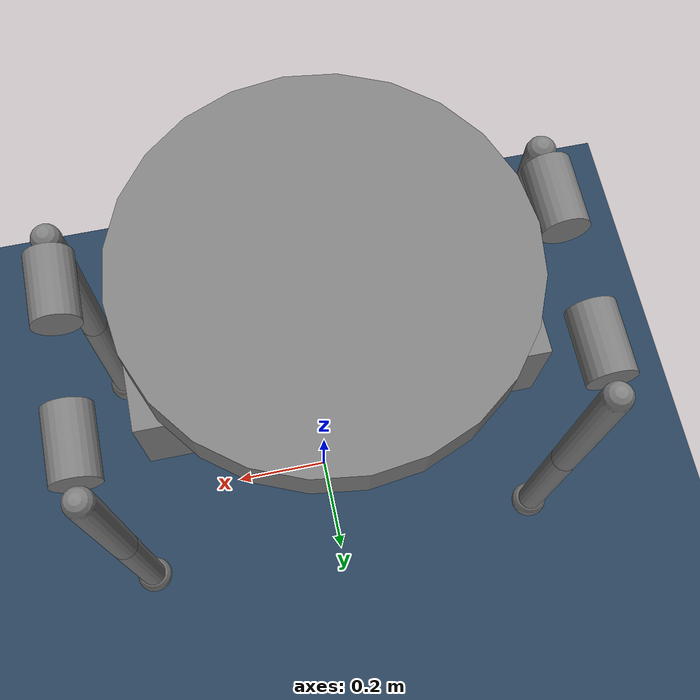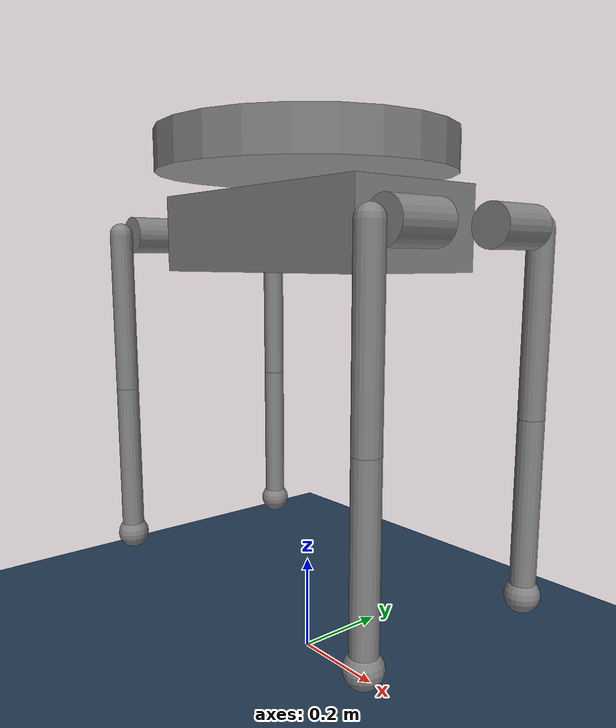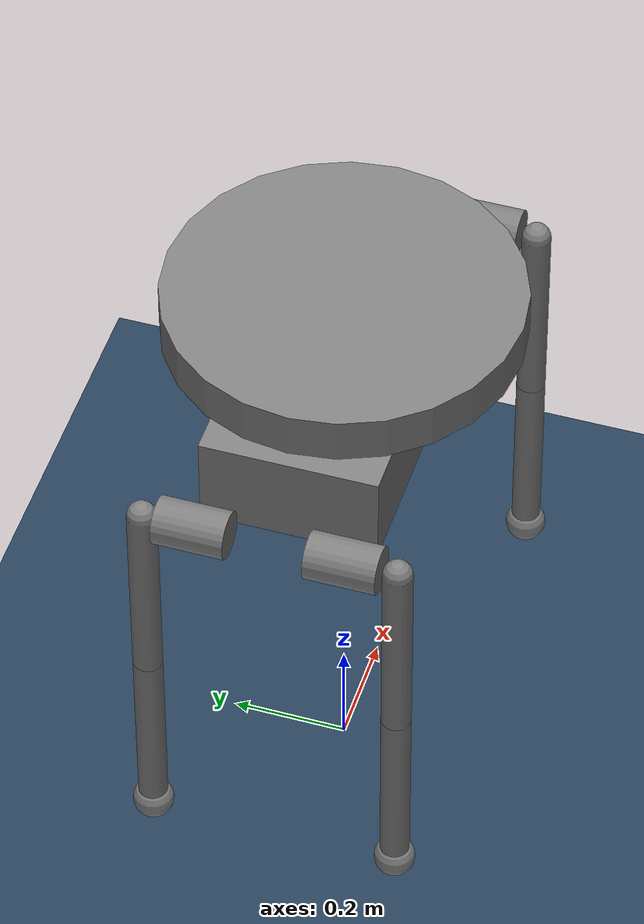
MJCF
<mujoco model="robot scene">

  <include file="model_105V1.xml"/>

  <statistic center="0 0 0.1" extent="0.8"/>

  <visual>
    <headlight diffuse="0.6 0.6 0.6"  ambient="0.3 0.3 0.3" specular="0 0 0"/>
    <rgba haze="0.15 0.25 0.35 1"/>
    <global azimuth="120" elevation="-20"/>
  </visual>

  <asset>
    <texture type="skybox" builtin="gradient" rgb1="0.3 0.5 0.7" rgb2="0 0 0" width="512"
        height="3072"/>
    <texture type="2d" name="groundplane" builtin="checker" mark="edge" rgb1="0.2 0.3 0.4"
        rgb2="0.1 0.2 0.3" markrgb="0.8 0.8 0.8" width="300" height="300"/>
    <material name="groundplane" texture="groundplane" texuniform="true" texrepeat="5 5"
        reflectance="0.0"/>
  </asset>

  <worldbody>
    <light pos="0 0 1.5" dir="0 0 -1" directional="true"/>
    <geom name="floor" size="0 0 0.05" type="plane" material="groundplane"/>
  </worldbody>

</mujoco>

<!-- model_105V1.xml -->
<mujoco model="prototype_model"> <!-- model 1 data20230527 -->
  <compiler angle="radian" assetdir="assets" texturedir="assets" discardvisual="false" autolimits="true" eulerseq="zyx"/>
  <option timestep="0.001"  tolerance="0.0000000001" impratio="1" noslip_iterations="10000"/>

  <visual >
    <rgba contactpoint="0.1 0.8 0.2 1" contactforce="0.7 0.9 0.9 1"/>
    <scale forcewidth="0.04" contactwidth="0.15" contactheight="0.01"/>
  </visual>

  <default>
    <default class="quadruped">
      <geom friction="0.8" margin="0.001"/>
      <default class="collision">
        <geom group="2"/>
        <default class="load">
          <geom type="cylinder" size="0.3 0.04" mass="24" pos="0 0 0.15" quat="1 0 0 0"/>
        </default>
        <default class="abad">
          <geom type="cylinder" size="0.04 0.06" mass="1.1"  quat="1 1 0 0"/>
        </default>
        <default class="thigh">
          <geom type="capsule" size="0.025" fromto="0 0 0 0 0 -0.35" mass="1.0"/>
        </default>
        <default class="calf">
          <geom type="capsule" size="0.025" fromto="0 0 0 0 0 -0.35" mass="0.68"/>
        </default>
        <default class="foot">
          <geom type="sphere" size="0.035" pos="0 0 -0.35" mass="0.0001" priority="1" solimp="0.015 1 0.031"
              condim="6" friction="0.8 0.02 0.01"/>
        </default>
        <default class="foot_site">
          <site size="0.035" pos="0 0 -0.35"/>
        </default>
      </default>
    </default>
  </default>

  <asset>
    <texture type="2d" name="trunk" file="texture.png"/>
    <material name="eame_color" texture="trunk" specular="1" shininess="0.25"/>
  </asset>

  <worldbody>
    <light name="spotlight" mode="targetbodycom" target="trunk_link" pos="0 -1 2"/>
    <body name="trunk_link" pos="0 0 0.9">
      <geom class="collision" mass="70.08" group="2" pos="0 0 0.0" size="0.3 0.15 0.08" type="box"/>
      <geom class="load"/>
      <site name="imu" size="0.01" pos="0 0 0"/>
      <freejoint/>
      <body name="FR_abad" pos="0.4 -0.086 0">
        <joint name="FR_abad_joint" pos="-0.0765 0 0" axis="1 0 0" range="-0.802851 0.802851" damping="0.5"/>
        <geom class="abad" group="2" pos="0 -0.04 0"/>
        <body name="FR_thigh" pos="0 -0.127 0">
          <geom class="thigh" group="2"/>
          <joint name="FR_hip_joint" pos="0 0.05 0" axis="0 -1 0" range="-4.18879 1.0472" damping="0.5"/>
          <body name="FR_calf" pos="0 0 -0.35">
            <joint name="FR_calf_joint" pos="0 0 0" axis="0 -1 0" range="0.1 3" damping="0.5"/>
            <geom class="calf" group="2"/>
            <geom class="foot"/>
            <site class="foot_site" name="fr_site"/>
          </body>
        </body>
      </body>
      <body name="FL_abad" pos="0.4 0.086 0">
        <joint name="FL_abad_joint" pos="-0.0765 0 0" axis="1 0 0" range="-0.802851 0.802851" damping="0.5"/>
        <geom class="abad" group="2"  pos="0 0.04 0"/>
        <body name="FL_thigh" pos="0 0.127 0">
          <joint name="FL_hip_joint" pos="0 -0.05 0" axis="0 -1 0" range="-4.18879 1.0472" damping="0.5"/>
          <geom class="thigh" group="2"/>
          <body name="FL_calf" pos="0 0 -0.35">
            <joint name="FL_calf_joint" pos="0 0 0" axis="0 -1 0" range="0.1 3" damping="0.5"/>
            <geom class="calf" group="2"/>
            <geom class="foot"/>
            <site class="foot_site" name="fl_site"/>
          </body>
        </body>
      </body>
      <body name="RR_abad" pos="-0.4 -0.086 0">
       <joint name="RR_abad_joint" pos="0.0765 0 0" axis="1 0 0" range="-0.802851 0.802851" damping="0.5"/>
       <geom class="abad" group="2" pos="0 -0.04 0"/>
       <body name="RR_thigh" pos="0 -0.127 0">
        <geom class="thigh" group="2"/>
        <joint name="RR_hip_joint" pos="0 0.05 0" axis="0 -1 0" range="-4.18879 1.0472" damping="0.5"/>
        <body name="RR_calf" pos="0 0 -0.35">
          <joint name="RR_calf_joint" pos="0 0 0" axis="0 -1 0" range="0.916297857 2.6965336943312392" damping="0.5"/>
          <geom class="calf" group="2"/>
          <geom class="foot"/>
          <site class="foot_site" name="rr_site"/>
        </body>
       </body>
      </body>
    <body name="RL_abad" pos="-0.4 0.086 0">
      <geom class="abad"  group="2"  pos="0 0.04 0"/>
      <joint name="RL_abad_joint" pos="0.0765 0 0" axis="1 0 0" range="-0.802851 0.802851" damping="0.5"/>
      <body name="RL_thigh" pos="0 0.127 0">
        <geom class="thigh" group="2"/>
        <joint name="RL_hip_joint" pos="0 -0.05 0" axis="0 -1 0" range="-4.18879 1.0472" damping="0.5"/>
        <body name="RL_calf" pos="0 0 -0.35">
          <joint name="RL_calf_joint" pos="0 0 0" axis="0 -1 0" range="0.916297857 2.6965336943312392" damping="0.5"/>
          <geom class="calf" group="2"/>
          <geom class="foot"/>
          <site class="foot_site" name="rl_site"/>
        </body>
      </body>
    </body>
    </body>
  </worldbody>

  <actuator>
    <motor name="FR_abad_tau" joint="FR_abad_joint" forcerange="-1000 1000"/>
    <motor name="FR_hip_tau" joint="FR_hip_joint" forcerange="-1000 1000"/>
    <motor name="FR_knee_tau" joint="FR_calf_joint" forcerange="-1000 1000"/>
    <motor name="FL_abad_tau" joint="FL_abad_joint" forcerange="-1000 1000"/>
    <motor name="FL_hip_tau" joint="FL_hip_joint" forcerange="-1000 1000"/>
    <motor name="FL_knee_tau" joint="FL_calf_joint" forcerange="-1000 1000"/>
    <motor name="RR_abad_tau" joint="RR_abad_joint" forcerange="-1000 1000"/>
    <motor name="RR_hip_tau" joint="RR_hip_joint" forcerange="-1000 1000"/>
    <motor name="RR_knee_tau" joint="RR_calf_joint" forcerange="-1000 1000"/>
    <motor name="RL_abad_tau" joint="RL_abad_joint" forcerange="-1000 1000"/>
    <motor name="RL_hip_tau" joint="RL_hip_joint" forcerange="-1000 1000"/>
    <motor name="RL_knee_tau" joint="RL_calf_joint" forcerange="-1000 1000"/>
  </actuator>
  <sensor>
    <framequat     name="imu_quat" objtype="site" objname="imu"/>
    <gyro          name="imu_omega"    site="imu" noise="5e-4" cutoff="34.9"/>
    <accelerometer name="imu_acc" site="imu" noise="1e-2" cutoff="157"/>
    <framepos name="fr_foot" objtype="site" objname="fr_site" reftype="site" refname="imu"/>
    <framepos name="fl_foot" objtype="site" objname="fl_site" reftype="site" refname="imu"/>
    <framepos name="rr_foot" objtype="site" objname="rr_site" reftype="site" refname="imu"/>
    <framepos name="rl_foot" objtype="site" objname="rl_site" reftype="site" refname="imu"/>
    <touch name="fr_touch" site="fr_site"/>
    <touch name="fl_touch" site="fl_site"/>
    <touch name="rr_touch" site="rr_site"/>
    <touch name="rl_touch" site="rl_site"/>
  </sensor>
  <keyframe>
    <key name="home" qpos="0 0 0.5 1 0 0 0 0 -0.6 1.2 0 -0.6 1.2 0 -0.6 1.2 0 -0.6 1.2"/>
  </keyframe>

</mujoco>
